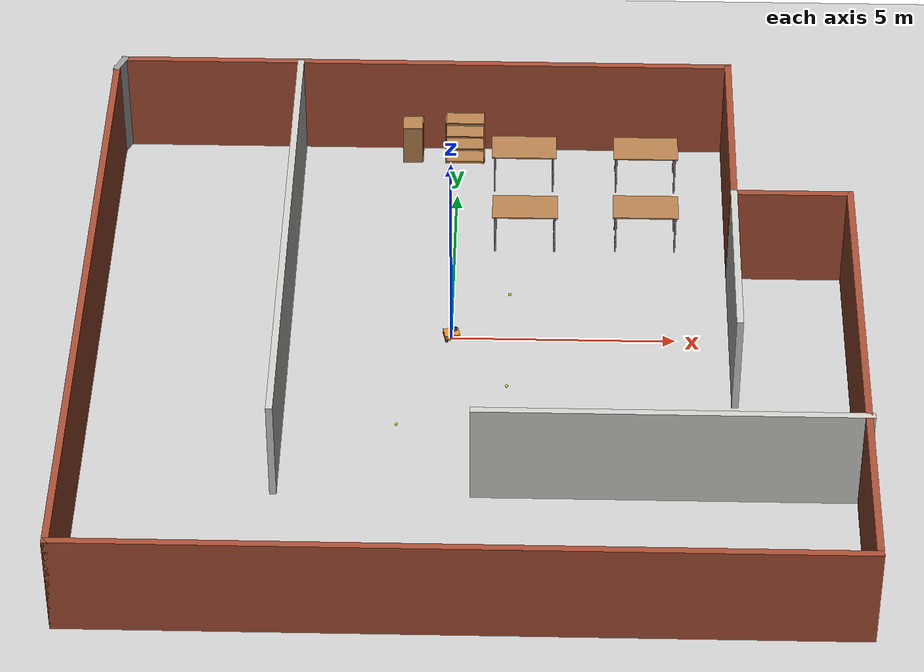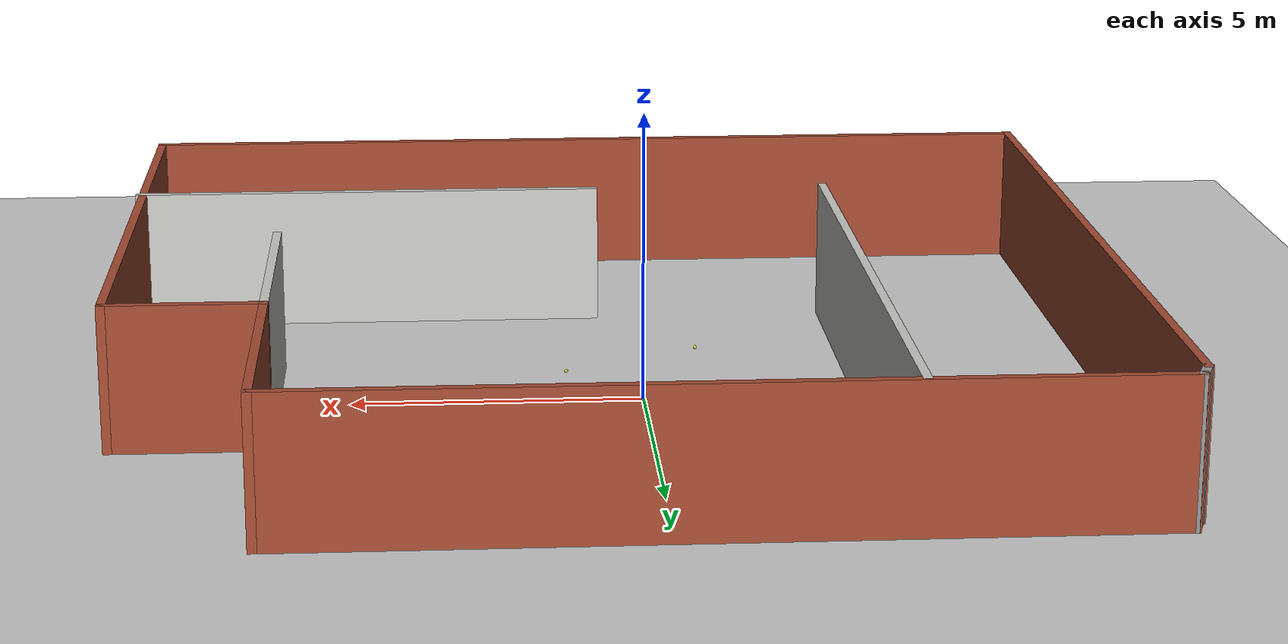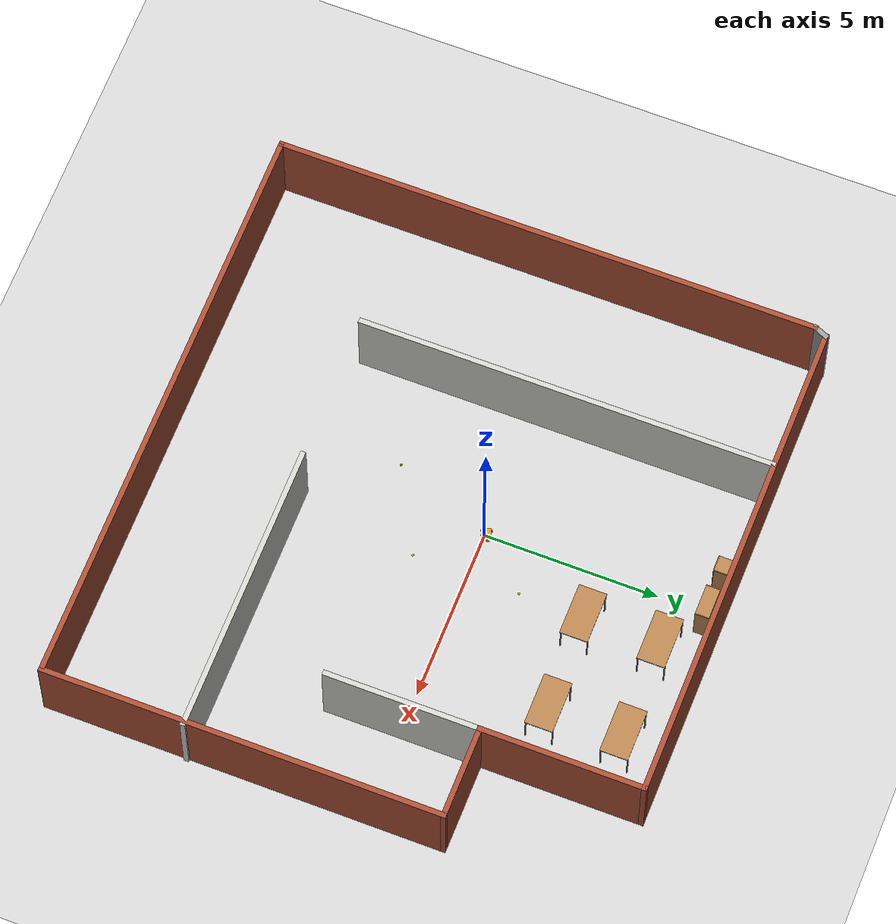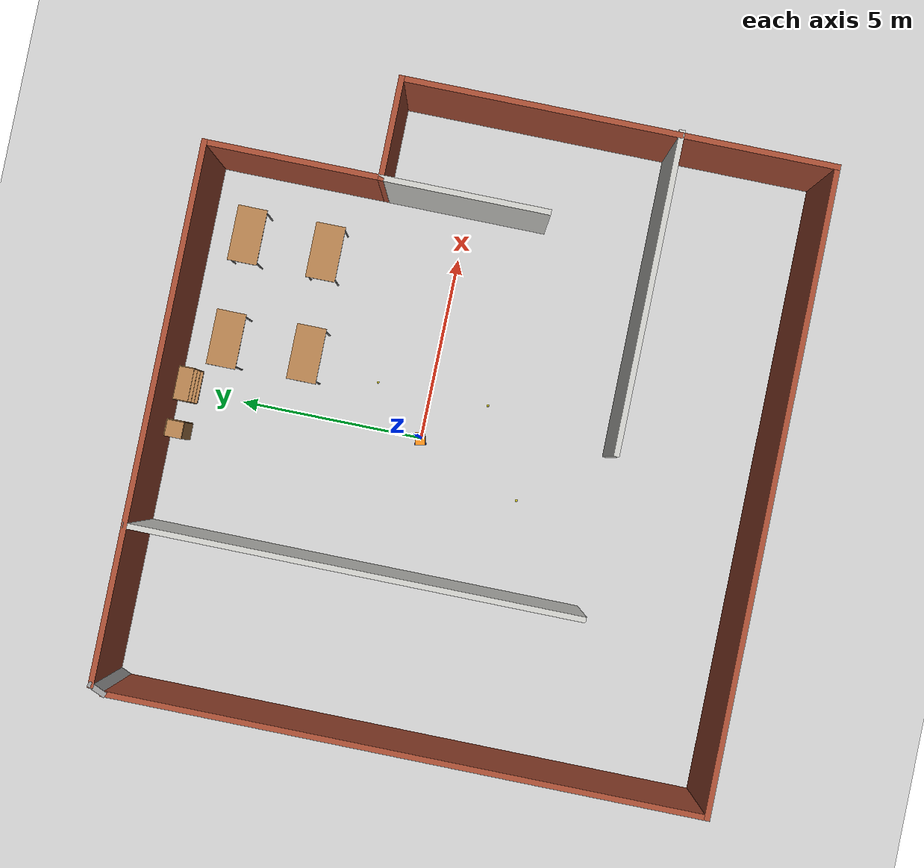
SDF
<sdf version="1.7">
 <world name="default">
  <model name="ground_plane">
   <static>1</static>
   <link name="link">
    <collision name="collision">
     <geometry><plane><normal>0 0 1</normal><size>100 100</size></plane></geometry>
     <surface>
      <contact><collide_bitmask>65535</collide_bitmask></contact>
      <friction><ode><mu>100</mu><mu2>50</mu2></ode></friction>
     </surface>
    </collision>
    <visual name="visual">
     <cast_shadows>0</cast_shadows>
     <geometry><plane><normal>0 0 1</normal><size>100 100</size></plane></geometry>
     <material>
      <script><uri>file://media/materials/scripts/gazebo.material</uri><name>Gazebo/Grey</name></script>
     </material>
    </visual>
   </link>
  </model>
  <model name="gcamp_small_building">
   <pose>0.46855 -1.10251 0 0 -0 0</pose>
   <link name="Wall_11">
    <collision name="Wall_11_Collision">
     <geometry><box><size>12 0.15 2.5</size></box></geometry>
     <pose>0 0 1.25 0 -0 0</pose>
    </collision>
    <visual name="Wall_11_Visual">
     <pose>0 0 1.25 0 -0 0</pose>
     <geometry><box><size>12 0.15 2.5</size></box></geometry>
     <material>
      <script><uri>file://media/materials/scripts/gazebo.material</uri><name>Gazebo/CeilingTiled</name></script>
      <ambient>1 1 1 1</ambient>
     </material>
     <meta><layer>0</layer></meta>
    </visual>
    <pose>-4.16991 2.00561 0 0 -0 -1.5708</pose>
   </link>
   <link name="Wall_13">
    <collision name="Wall_13_Collision">
     <geometry><box><size>8.5 0.15 2.5</size></box></geometry>
     <pose>0 0 1.25 0 -0 0</pose>
    </collision>
    <visual name="Wall_13_Visual">
     <pose>0 0 1.25 0 -0 0</pose>
     <geometry><box><size>8.5 0.15 2.5</size></box></geometry>
     <material>
      <script><uri>file://media/materials/scripts/gazebo.material</uri><name>Gazebo/CeilingTiled</name></script>
      <ambient>1 1 1 1</ambient>
     </material>
     <meta><layer>0</layer></meta>
    </visual>
    <pose>4.29338 -3.92287 0 0 -0 0</pose>
   </link>
   <link name="Wall_15">
    <collision name="Wall_15_Collision">
     <geometry><box><size>4.5 0.15 2.5</size></box></geometry>
     <pose>0 0 1.25 0 -0 0</pose>
    </collision>
    <visual name="Wall_15_Visual">
     <pose>0 0 1.25 0 -0 0</pose>
     <geometry><box><size>4.5 0.15 2.5</size></box></geometry>
     <material>
      <script><uri>file://media/materials/scripts/gazebo.material</uri><name>Gazebo/CeilingTiled</name></script>
      <ambient>1 1 1 1</ambient>
     </material>
     <meta><layer>0</layer></meta>
    </visual>
    <pose>5.8051 1.18826 0 0 -0 -1.5708</pose>
   </link>
   <link name="Wall_3">
    <collision name="Wall_3_Collision">
     <geometry><box><size>15.75 0.15 2.5</size></box></geometry>
     <pose>0 0 1.25 0 -0 0</pose>
    </collision>
    <visual name="Wall_3_Visual">
     <pose>0 0 1.25 0 -0 0</pose>
     <geometry><box><size>15.75 0.15 2.5</size></box></geometry>
     <material>
      <script><uri>file://media/materials/scripts/gazebo.material</uri><name>Gazebo/Bricks</name></script>
      <ambient>1 1 1 1</ambient>
     </material>
     <meta><layer>0</layer></meta>
    </visual>
    <pose>-8.4449 -0.18674 0 0 -0 -1.5708</pose>
   </link>
   <link name="Wall_4">
    <collision name="Wall_4_Collision">
     <geometry><box><size>17 0.15 2.5</size></box></geometry>
     <pose>0 0 1.25 0 -0 0</pose>
    </collision>
    <visual name="Wall_4_Visual">
     <pose>0 0 1.25 0 -0 0</pose>
     <geometry><box><size>17 0.15 2.5</size></box></geometry>
     <material>
      <script><uri>file://media/materials/scripts/gazebo.material</uri><name>Gazebo/Bricks</name></script>
      <ambient>1 1 1 1</ambient>
     </material>
     <meta><layer>0</layer></meta>
    </visual>
    <pose>-0.019899 -7.98674 0 0 -0 0</pose>
   </link>
   <link name="Wall_5">
    <collision name="Wall_5_Collision">
     <geometry><box><size>11.5 0.15 2.5</size></box></geometry>
     <pose>0 0 1.25 0 -0 0</pose>
    </collision>
    <visual name="Wall_5_Visual">
     <pose>0 0 1.25 0 -0 0</pose>
     <geometry><box><size>11.5 0.15 2.5</size></box></geometry>
     <material>
      <script><uri>file://media/materials/scripts/gazebo.material</uri><name>Gazebo/Bricks</name></script>
      <ambient>1 1 1 1</ambient>
     </material>
     <meta><layer>0</layer></meta>
    </visual>
    <pose>8.4051 -2.31174 0 0 -0 1.5708</pose>
   </link>
   <link name="Wall_6">
    <collision name="Wall_6_Collision">
     <geometry><box><size>2.75 0.15 2.5</size></box></geometry>
     <pose>0 0 1.25 0 -0 0</pose>
    </collision>
    <visual name="Wall_6_Visual">
     <pose>0 0 1.25 0 -0 0</pose>
     <geometry><box><size>2.75 0.15 2.5</size></box></geometry>
     <material>
      <script><uri>file://media/materials/scripts/gazebo.material</uri><name>Gazebo/Bricks</name></script>
      <ambient>1 1 1 1</ambient>
     </material>
     <meta><layer>0</layer></meta>
    </visual>
    <pose>7.1051 3.36326 0 0 -0 3.14159</pose>
   </link>
   <link name="Wall_7">
    <collision name="Wall_7_Collision">
     <geometry><box><size>4.75 0.15 2.5</size></box></geometry>
     <pose>0 0 1.25 0 -0 0</pose>
    </collision>
    <visual name="Wall_7_Visual">
     <pose>0 0 1.25 0 -0 0</pose>
     <geometry><box><size>4.75 0.15 2.5</size></box></geometry>
     <material>
      <script><uri>file://media/materials/scripts/gazebo.material</uri><name>Gazebo/Bricks</name></script>
      <ambient>1 1 1 1</ambient>
     </material>
     <meta><layer>0</layer></meta>
    </visual>
    <pose>5.8051 5.66326 0 0 -0 1.5708</pose>
   </link>
   <link name="Wall_8">
    <collision name="Wall_8_Collision">
     <geometry><box><size>14.25 0.15 2.5</size></box></geometry>
     <pose>0 0 1.25 0 -0 0</pose>
    </collision>
    <visual name="Wall_8_Visual">
     <pose>0 0 1.25 0 -0 0</pose>
     <geometry><box><size>14.25 0.15 2.5</size></box></geometry>
     <material>
      <script><uri>file://media/materials/scripts/gazebo.material</uri><name>Gazebo/Bricks</name></script>
      <ambient>1 1 1 1</ambient>
     </material>
     <meta><layer>0</layer></meta>
    </visual>
    <pose>-1.2449 7.96326 0 0 -0 3.14159</pose>
   </link>
   <link name="Wall_9">
    <collision name="Wall_9_Collision">
     <geometry><box><size>0.530789 0.15 2.5</size></box></geometry>
     <pose>0 0 1.25 0 -0 0</pose>
    </collision>
    <visual name="Wall_9_Visual">
     <pose>0 0 1.25 0 -0 0</pose>
     <geometry><box><size>0.530789 0.15 2.5</size></box></geometry>
     <material>
      <script><uri>file://media/materials/scripts/gazebo.material</uri><name>Gazebo/Grey</name></script>
      <ambient>1 1 1 1</ambient>
     </material>
     <meta><layer>0</layer></meta>
    </visual>
    <pose>-8.3699 7.78826 0 0 -0 -1.97569</pose>
   </link>
   <static>1</static>
  </model>
  <model name="table">
   <static>1</static>
   <link name="link">
    <collision name="surface">
     <pose>0 0 1 0 -0 0</pose>
     <geometry><box><size>1.5 0.8 0.03</size></box></geometry>
     <surface><friction><ode><mu>0.6</mu><mu2>0.6</mu2></ode></friction></surface>
    </collision>
    <visual name="visual1">
     <pose>0 0 1 0 -0 0</pose>
     <geometry><box><size>1.5 0.8 0.03</size></box></geometry>
     <material>
      <script><uri>file://media/materials/scripts/gazebo.material</uri><name>Gazebo/Wood</name></script>
     </material>
    </visual>
    <collision name="front_left_leg">
     <pose>0.68 0.38 0.5 0 -0 0</pose>
     <geometry><cylinder><radius>0.02</radius><length>1</length></cylinder></geometry>
    </collision>
    <visual name="front_left_leg">
     <pose>0.68 0.38 0.5 0 -0 0</pose>
     <geometry><cylinder><radius>0.02</radius><length>1</length></cylinder></geometry>
     <material>
      <script><uri>file://media/materials/scripts/gazebo.material</uri><name>Gazebo/Grey</name></script>
     </material>
    </visual>
    <collision name="front_right_leg">
     <pose>0.68 -0.38 0.5 0 -0 0</pose>
     <geometry><cylinder><radius>0.02</radius><length>1</length></cylinder></geometry>
    </collision>
    <visual name="front_right_leg">
     <pose>0.68 -0.38 0.5 0 -0 0</pose>
     <geometry><cylinder><radius>0.02</radius><length>1</length></cylinder></geometry>
     <material>
      <script><uri>file://media/materials/scripts/gazebo.material</uri><name>Gazebo/Grey</name></script>
     </material>
    </visual>
    <collision name="back_right_leg">
     <pose>-0.68 -0.38 0.5 0 -0 0</pose>
     <geometry><cylinder><radius>0.02</radius><length>1</length></cylinder></geometry>
    </collision>
    <visual name="back_right_leg">
     <pose>-0.68 -0.38 0.5 0 -0 0</pose>
     <geometry><cylinder><radius>0.02</radius><length>1</length></cylinder></geometry>
     <material>
      <script><uri>file://media/materials/scripts/gazebo.material</uri><name>Gazebo/Grey</name></script>
     </material>
    </visual>
    <collision name="back_left_leg">
     <pose>-0.68 0.38 0.5 0 -0 0</pose>
     <geometry><cylinder><radius>0.02</radius><length>1</length></cylinder></geometry>
    </collision>
    <visual name="back_left_leg">
     <pose>-0.68 0.38 0.5 0 -0 0</pose>
     <geometry><cylinder><radius>0.02</radius><length>1</length></cylinder></geometry>
     <material>
      <script><uri>file://media/materials/scripts/gazebo.material</uri><name>Gazebo/Grey</name></script>
     </material>
    </visual>
   </link>
   <pose>4.38563 5.61757 0 0 -0 0</pose>
  </model>
  <model name="table_0">
   <static>1</static>
   <link name="link">
    <collision name="surface">
     <pose>0 0 1 0 -0 0</pose>
     <geometry><box><size>1.5 0.8 0.03</size></box></geometry>
     <surface><friction><ode><mu>0.6</mu><mu2>0.6</mu2></ode></friction></surface>
    </collision>
    <visual name="visual1">
     <pose>0 0 1 0 -0 0</pose>
     <geometry><box><size>1.5 0.8 0.03</size></box></geometry>
     <material>
      <script><uri>file://media/materials/scripts/gazebo.material</uri><name>Gazebo/Wood</name></script>
     </material>
    </visual>
    <collision name="front_left_leg">
     <pose>0.68 0.38 0.5 0 -0 0</pose>
     <geometry><cylinder><radius>0.02</radius><length>1</length></cylinder></geometry>
    </collision>
    <visual name="front_left_leg">
     <pose>0.68 0.38 0.5 0 -0 0</pose>
     <geometry><cylinder><radius>0.02</radius><length>1</length></cylinder></geometry>
     <material>
      <script><uri>file://media/materials/scripts/gazebo.material</uri><name>Gazebo/Grey</name></script>
     </material>
    </visual>
    <collision name="front_right_leg">
     <pose>0.68 -0.38 0.5 0 -0 0</pose>
     <geometry><cylinder><radius>0.02</radius><length>1</length></cylinder></geometry>
    </collision>
    <visual name="front_right_leg">
     <pose>0.68 -0.38 0.5 0 -0 0</pose>
     <geometry><cylinder><radius>0.02</radius><length>1</length></cylinder></geometry>
     <material>
      <script><uri>file://media/materials/scripts/gazebo.material</uri><name>Gazebo/Grey</name></script>
     </material>
    </visual>
    <collision name="back_right_leg">
     <pose>-0.68 -0.38 0.5 0 -0 0</pose>
     <geometry><cylinder><radius>0.02</radius><length>1</length></cylinder></geometry>
    </collision>
    <visual name="back_right_leg">
     <pose>-0.68 -0.38 0.5 0 -0 0</pose>
     <geometry><cylinder><radius>0.02</radius><length>1</length></cylinder></geometry>
     <material>
      <script><uri>file://media/materials/scripts/gazebo.material</uri><name>Gazebo/Grey</name></script>
     </material>
    </visual>
    <collision name="back_left_leg">
     <pose>-0.68 0.38 0.5 0 -0 0</pose>
     <geometry><cylinder><radius>0.02</radius><length>1</length></cylinder></geometry>
    </collision>
    <visual name="back_left_leg">
     <pose>-0.68 0.38 0.5 0 -0 0</pose>
     <geometry><cylinder><radius>0.02</radius><length>1</length></cylinder></geometry>
     <material>
      <script><uri>file://media/materials/scripts/gazebo.material</uri><name>Gazebo/Grey</name></script>
     </material>
    </visual>
   </link>
   <pose>4.35793 3.48172 0 0 -0 0</pose>
  </model>
  <model name="bookshelf">
   <static>1</static>
   <link name="link">
    <inertial><mass>1</mass></inertial>
    <collision name="back">
     <pose>0 0.005 0.6 0 -0 0</pose>
     <geometry><box><size>0.9 0.01 1.2</size></box></geometry>
    </collision>
    <visual name="visual1">
     <pose>0 0.005 0.6 0 -0 0</pose>
     <geometry><box><size>0.9 0.01 1.2</size></box></geometry>
     <material>
      <script><uri>file://media/materials/scripts/gazebo.material</uri><name>Gazebo/Wood</name></script>
     </material>
    </visual>
    <collision name="left_side">
     <pose>0.45 -0.195 0.6 0 -0 0</pose>
     <geometry><box><size>0.02 0.4 1.2</size></box></geometry>
    </collision>
    <visual name="visual2">
     <pose>0.45 -0.195 0.6 0 -0 0</pose>
     <geometry><box><size>0.02 0.4 1.2</size></box></geometry>
     <material>
      <script><uri>file://media/materials/scripts/gazebo.material</uri><name>Gazebo/Wood</name></script>
     </material>
    </visual>
    <collision name="right_side">
     <pose>-0.45 -0.195 0.6 0 -0 0</pose>
     <geometry><box><size>0.02 0.4 1.2</size></box></geometry>
    </collision>
    <visual name="visual3">
     <pose>-0.45 -0.195 0.6 0 -0 0</pose>
     <geometry><box><size>0.02 0.4 1.2</size></box></geometry>
     <material>
      <script><uri>file://media/materials/scripts/gazebo.material</uri><name>Gazebo/Wood</name></script>
     </material>
    </visual>
    <collision name="bottom">
     <pose>0 -0.195 0.03 0 -0 0</pose>
     <geometry><box><size>0.88 0.4 0.06</size></box></geometry>
    </collision>
    <visual name="visual4">
     <pose>0 -0.195 0.03 0 -0 0</pose>
     <geometry><box><size>0.88 0.4 0.06</size></box></geometry>
     <material>
      <script><uri>file://media/materials/scripts/gazebo.material</uri><name>Gazebo/Wood</name></script>
     </material>
    </visual>
    <collision name="top">
     <pose>0 -0.195 1.19 0 -0 0</pose>
     <geometry><box><size>0.88 0.4 0.02</size></box></geometry>
    </collision>
    <visual name="visual5">
     <pose>0 -0.195 1.19 0 -0 0</pose>
     <geometry><box><size>0.88 0.4 0.02</size></box></geometry>
     <material>
      <script><uri>file://media/materials/scripts/gazebo.material</uri><name>Gazebo/Wood</name></script>
     </material>
    </visual>
    <collision name="low_shelf">
     <pose>0 -0.195 0.43 0 -0 0</pose>
     <geometry><box><size>0.88 0.4 0.02</size></box></geometry>
    </collision>
    <visual name="visual6">
     <pose>0 -0.195 0.43 0 -0 0</pose>
     <geometry><box><size>0.88 0.4 0.02</size></box></geometry>
     <material>
      <script><uri>file://media/materials/scripts/gazebo.material</uri><name>Gazebo/Wood</name></script>
     </material>
    </visual>
    <collision name="high_shelf">
     <pose>0 -0.195 0.8 0 -0 0</pose>
     <geometry><box><size>0.88 0.4 0.02</size></box></geometry>
    </collision>
    <visual name="visual7">
     <pose>0 -0.195 0.8 0 -0 0</pose>
     <geometry><box><size>0.88 0.4 0.02</size></box></geometry>
     <material>
      <script><uri>file://media/materials/scripts/gazebo.material</uri><name>Gazebo/Wood</name></script>
     </material>
    </visual>
   </link>
   <pose>0.151486 6.62816 0 0 -0 0</pose>
  </model>
  <model name="table_1">
   <static>1</static>
   <link name="link">
    <collision name="surface">
     <pose>0 0 1 0 -0 0</pose>
     <geometry><box><size>1.5 0.8 0.03</size></box></geometry>
     <surface><friction><ode><mu>0.6</mu><mu2>0.6</mu2></ode></friction></surface>
    </collision>
    <visual name="visual1">
     <pose>0 0 1 0 -0 0</pose>
     <geometry><box><size>1.5 0.8 0.03</size></box></geometry>
     <material>
      <script><uri>file://media/materials/scripts/gazebo.material</uri><name>Gazebo/Wood</name></script>
     </material>
    </visual>
    <collision name="front_left_leg">
     <pose>0.68 0.38 0.5 0 -0 0</pose>
     <geometry><cylinder><radius>0.02</radius><length>1</length></cylinder></geometry>
    </collision>
    <visual name="front_left_leg">
     <pose>0.68 0.38 0.5 0 -0 0</pose>
     <geometry><cylinder><radius>0.02</radius><length>1</length></cylinder></geometry>
     <material>
      <script><uri>file://media/materials/scripts/gazebo.material</uri><name>Gazebo/Grey</name></script>
     </material>
    </visual>
    <collision name="front_right_leg">
     <pose>0.68 -0.38 0.5 0 -0 0</pose>
     <geometry><cylinder><radius>0.02</radius><length>1</length></cylinder></geometry>
    </collision>
    <visual name="front_right_leg">
     <pose>0.68 -0.38 0.5 0 -0 0</pose>
     <geometry><cylinder><radius>0.02</radius><length>1</length></cylinder></geometry>
     <material>
      <script><uri>file://media/materials/scripts/gazebo.material</uri><name>Gazebo/Grey</name></script>
     </material>
    </visual>
    <collision name="back_right_leg">
     <pose>-0.68 -0.38 0.5 0 -0 0</pose>
     <geometry><cylinder><radius>0.02</radius><length>1</length></cylinder></geometry>
    </collision>
    <visual name="back_right_leg">
     <pose>-0.68 -0.38 0.5 0 -0 0</pose>
     <geometry><cylinder><radius>0.02</radius><length>1</length></cylinder></geometry>
     <material>
      <script><uri>file://media/materials/scripts/gazebo.material</uri><name>Gazebo/Grey</name></script>
     </material>
    </visual>
    <collision name="back_left_leg">
     <pose>-0.68 0.38 0.5 0 -0 0</pose>
     <geometry><cylinder><radius>0.02</radius><length>1</length></cylinder></geometry>
    </collision>
    <visual name="back_left_leg">
     <pose>-0.68 0.38 0.5 0 -0 0</pose>
     <geometry><cylinder><radius>0.02</radius><length>1</length></cylinder></geometry>
     <material>
      <script><uri>file://media/materials/scripts/gazebo.material</uri><name>Gazebo/Grey</name></script>
     </material>
    </visual>
   </link>
   <pose>1.54863 5.60652 0 0 -0 0</pose>
  </model>
  <model name="table_2">
   <static>1</static>
   <link name="link">
    <collision name="surface">
     <pose>0 0 1 0 -0 0</pose>
     <geometry><box><size>1.5 0.8 0.03</size></box></geometry>
     <surface><friction><ode><mu>0.6</mu><mu2>0.6</mu2></ode></friction></surface>
    </collision>
    <visual name="visual1">
     <pose>0 0 1 0 -0 0</pose>
     <geometry><box><size>1.5 0.8 0.03</size></box></geometry>
     <material>
      <script><uri>file://media/materials/scripts/gazebo.material</uri><name>Gazebo/Wood</name></script>
     </material>
    </visual>
    <collision name="front_left_leg">
     <pose>0.68 0.38 0.5 0 -0 0</pose>
     <geometry><cylinder><radius>0.02</radius><length>1</length></cylinder></geometry>
    </collision>
    <visual name="front_left_leg">
     <pose>0.68 0.38 0.5 0 -0 0</pose>
     <geometry><cylinder><radius>0.02</radius><length>1</length></cylinder></geometry>
     <material>
      <script><uri>file://media/materials/scripts/gazebo.material</uri><name>Gazebo/Grey</name></script>
     </material>
    </visual>
    <collision name="front_right_leg">
     <pose>0.68 -0.38 0.5 0 -0 0</pose>
     <geometry><cylinder><radius>0.02</radius><length>1</length></cylinder></geometry>
    </collision>
    <visual name="front_right_leg">
     <pose>0.68 -0.38 0.5 0 -0 0</pose>
     <geometry><cylinder><radius>0.02</radius><length>1</length></cylinder></geometry>
     <material>
      <script><uri>file://media/materials/scripts/gazebo.material</uri><name>Gazebo/Grey</name></script>
     </material>
    </visual>
    <collision name="back_right_leg">
     <pose>-0.68 -0.38 0.5 0 -0 0</pose>
     <geometry><cylinder><radius>0.02</radius><length>1</length></cylinder></geometry>
    </collision>
    <visual name="back_right_leg">
     <pose>-0.68 -0.38 0.5 0 -0 0</pose>
     <geometry><cylinder><radius>0.02</radius><length>1</length></cylinder></geometry>
     <material>
      <script><uri>file://media/materials/scripts/gazebo.material</uri><name>Gazebo/Grey</name></script>
     </material>
    </visual>
    <collision name="back_left_leg">
     <pose>-0.68 0.38 0.5 0 -0 0</pose>
     <geometry><cylinder><radius>0.02</radius><length>1</length></cylinder></geometry>
    </collision>
    <visual name="back_left_leg">
     <pose>-0.68 0.38 0.5 0 -0 0</pose>
     <geometry><cylinder><radius>0.02</radius><length>1</length></cylinder></geometry>
     <material>
      <script><uri>file://media/materials/scripts/gazebo.material</uri><name>Gazebo/Grey</name></script>
     </material>
    </visual>
   </link>
   <pose>1.5944 3.43185 0 0 -0 0</pose>
  </model>
  <model name="cabinet_0">
   <static>1</static>
   <link name="cabinet_bottom_plate">
    <inertial>
     <pose>0 0 -1 0 -0 0</pose>
     <inertia><ixx>2.05</ixx><ixy>0</ixy><ixz>0</ixz><iyy>2.05</iyy><iyz>0</iyz><izz>2.05</izz></inertia>
     <mass>25</mass>
    </inertial>
    <collision name="cabinet_bottom_plate_geom">
     <pose>0 0 0.01 0 -0 0</pose>
     <geometry><box><size>0.45 0.45 0.02</size></box></geometry>
    </collision>
    <visual name="cabinet_bottom_plate_geom_visual">
     <pose>0 0 0.01 0 -0 0</pose>
     <geometry><box><size>0.45 0.45 0.02</size></box></geometry>
     <material>
      <script><uri>file://media/materials/scripts/gazebo.material</uri><name>Gazebo/Wood</name></script>
     </material>
    </visual>
    <collision name="cabinet_bottom_plate_geom_cabinet_back_plate">
     <pose>0.235 0 0.51 0 -0 0</pose>
     <geometry><box><size>0.02 0.45 1.02</size></box></geometry>
    </collision>
    <visual name="cabinet_bottom_plate_geom_cabinet_back_plate_visual">
     <pose>0.235 0 0.51 0 -0 0</pose>
     <geometry><box><size>0.02 0.45 1.02</size></box></geometry>
     <material>
      <script><uri>file://media/materials/scripts/gazebo.material</uri><name>Gazebo/Wood</name></script>
     </material>
    </visual>
    <collision name="cabinet_bottom_plate_geom_cabinet_left_plate">
     <pose>0 0.235 0.51 0 -0 0</pose>
     <geometry><box><size>0.45 0.02 1.02</size></box></geometry>
    </collision>
    <visual name="cabinet_bottom_plate_geom_cabinet_left_plate_visual">
     <pose>0 0.235 0.51 0 -0 0</pose>
     <geometry><box><size>0.45 0.02 1.02</size></box></geometry>
     <material>
      <script><uri>file://media/materials/scripts/gazebo.material</uri><name>Gazebo/Wood</name></script>
     </material>
    </visual>
    <collision name="cabinet_bottom_plate_geom_cabinet_middle_plate">
     <pose>0 0 0.51 0 -0 0</pose>
     <geometry><box><size>0.45 0.45 0.02</size></box></geometry>
    </collision>
    <visual name="cabinet_bottom_plate_geom_cabinet_middle_plate_visual">
     <pose>0 0 0.51 0 -0 0</pose>
     <geometry><box><size>0.45 0.45 0.02</size></box></geometry>
     <material>
      <script><uri>file://media/materials/scripts/gazebo.material</uri><name>Gazebo/Wood</name></script>
     </material>
    </visual>
    <collision name="cabinet_bottom_plate_geom_cabinet_right_plate">
     <pose>0 -0.235 0.51 0 -0 0</pose>
     <geometry><box><size>0.45 0.02 1.02</size></box></geometry>
    </collision>
    <visual name="cabinet_bottom_plate_geom_cabinet_right_plate_visual">
     <pose>0 -0.235 0.51 0 -0 0</pose>
     <geometry><box><size>0.45 0.02 1.02</size></box></geometry>
     <material>
      <script><uri>file://media/materials/scripts/gazebo.material</uri><name>Gazebo/Wood</name></script>
     </material>
    </visual>
    <collision name="cabinet_bottom_plate_geom_cabinet_top_plate">
     <pose>0 0 1.01 0 -0 0</pose>
     <geometry><box><size>0.45 0.45 0.02</size></box></geometry>
    </collision>
    <visual name="cabinet_bottom_plate_geom_cabinet_top_plate_visual">
     <pose>0 0 1.01 0 -0 0</pose>
     <geometry><box><size>0.45 0.45 0.02</size></box></geometry>
     <material>
      <script><uri>file://media/materials/scripts/gazebo.material</uri><name>Gazebo/Wood</name></script>
     </material>
    </visual>
   </link>
   <pose>-1.07996 6.47759 0 0 -0 0</pose>
  </model>
  <model name="my_bot">
   <link name="base_link">
    <inertial>
     <pose>-0.042393 0 0.081098 0 -0 0</pose>
     <mass>0.61</mass>
     <inertia>
      <ixx>0.00561003</ixx>
      <ixy>0</ixy>
      <ixz>-0.000833484</ixz>
      <iyy>0.00813047</iyy>
      <iyz>0</iyz>
      <izz>0.00849792</izz>
     </inertia>
    </inertial>
    <collision name="base_link_fixed_joint_lump__chassis_collision">
     <pose>-0.0585 0 0.059 0 -0 0</pose>
     <geometry><box><size>0.335 0.265 0.138</size></box></geometry>
    </collision>
    <collision name="base_link_fixed_joint_lump__caster_wheel_collision_1">
     <pose>0.099 0 -0.023 0 -0 0</pose>
     <geometry><sphere><radius>0.01</radius></sphere></geometry>
     <surface><friction><ode><mu>0.001</mu><mu2>0.001</mu2></ode></friction></surface>
    </collision>
    <collision name="base_link_fixed_joint_lump__laser_frame_collision_2">
     <pose>0.024 0 0.202 0 -0 0</pose>
     <geometry><cylinder><length>0.04</length><radius>0.05</radius></cylinder></geometry>
    </collision>
    <visual name="base_link_fixed_joint_lump__chassis_visual">
     <pose>-0.0585 0 0.059 0 -0 0</pose>
     <geometry><box><size>0.335 0.265 0.138</size></box></geometry>
     <material>
      <script><name>Gazebo/Orange</name><uri>file://media/materials/scripts/gazebo.material</uri></script>
     </material>
    </visual>
    <visual name="base_link_fixed_joint_lump__caster_wheel_visual_1">
     <pose>0.099 0 -0.023 0 -0 0</pose>
     <geometry><sphere><radius>0.01</radius></sphere></geometry>
     <material>
      <script><name>Gazebo/White</name><uri>file://media/materials/scripts/gazebo.material</uri></script>
     </material>
    </visual>
    <visual name="base_link_fixed_joint_lump__face_link_visual_2">
     <pose>0.109 0.05 0.069 3.14159 1.57079 3.14159</pose>
     <geometry><cylinder><length>0.002</length><radius>0.01</radius></cylinder></geometry>
     <material>
      <script><name>Gazebo/Black</name><uri>file://media/materials/scripts/gazebo.material</uri></script>
     </material>
    </visual>
    <visual name="base_link_fixed_joint_lump__face_link_visual_3">
     <pose>0.109 -0.05 0.069 3.14159 1.57079 3.14159</pose>
     <geometry><cylinder><length>0.002</length><radius>0.01</radius></cylinder></geometry>
     <material>
      <script><name>Gazebo/Black</name><uri>file://media/materials/scripts/gazebo.material</uri></script>
     </material>
    </visual>
    <visual name="base_link_fixed_joint_lump__face_link_visual_4">
     <pose>0.098 0 0.059 0 1.5 0</pose>
     <geometry><cylinder><length>0.02</length><radius>0.05</radius></cylinder></geometry>
     <material>
      <script><name>Gazebo/Black</name><uri>file://media/materials/scripts/gazebo.material</uri></script>
     </material>
    </visual>
    <visual name="base_link_fixed_joint_lump__laser_frame_visual_5">
     <pose>0.024 0 0.202 0 -0 0</pose>
     <geometry><cylinder><length>0.04</length><radius>0.05</radius></cylinder></geometry>
     <material>
      <script><name>Gazebo/Black</name><uri>file://media/materials/scripts/gazebo.material</uri></script>
     </material>
    </visual>
    <visual name="base_link_fixed_joint_lump__laser_frame_visual_6">
     <pose>0.024 0 0.152 0 -0 0</pose>
     <geometry><cylinder><length>0.1</length><radius>0.01</radius></cylinder></geometry>
     <material>
      <script><name>Gazebo/Black</name><uri>file://media/materials/scripts/gazebo.material</uri></script>
     </material>
    </visual>
    <sensor name="laser" type="ray">
     <visualize>0</visualize>
     <update_rate>10</update_rate>
     <ray>
      <scan>
       <horizontal>
        <samples>360</samples>
        <min_angle>-3.14</min_angle>
        <max_angle>3.14</max_angle>
        <resolution>1</resolution>
       </horizontal>
       <vertical><samples>1</samples><min_angle>0</min_angle><max_angle>0</max_angle></vertical>
      </scan>
      <range><min>0.3</min><max>12</max></range>
     </ray>
     <plugin name="laser_controller" filename="libgazebo_ros_ray_sensor.so">
      <ros><argument>~/out:=scan</argument></ros>
      <output_type>sensor_msgs/LaserScan</output_type>
      <frame_name>laser_frame</frame_name>
     </plugin>
     <pose>0.024 0 0.202 0 -0 0</pose>
    </sensor>
   </link>
   <joint name="left_wheel_joint" type="revolute">
    <pose relative_to="base_link">-0.2 0.1485 0 -1.5708 0 0</pose>
    <parent>base_link</parent>
    <child>left_wheel</child>
    <axis>
     <xyz>0 0 1</xyz>
     <limit><lower>-1e+16</lower><upper>1e+16</upper></limit>
     <dynamics><spring_reference>0</spring_reference><spring_stiffness>0</spring_stiffness></dynamics>
    </axis>
   </joint>
   <link name="left_wheel">
    <pose relative_to="left_wheel_joint">0 0 0 0 -0 0</pose>
    <inertial>
     <mass>0.05</mass>
     <inertia>
      <ixx>1.64292e-05</ixx>
      <ixy>0</ixy>
      <ixz>0</ixz>
      <iyy>1.64292e-05</iyy>
      <iyz>0</iyz>
      <izz>2.7225e-05</izz>
     </inertia>
    </inertial>
    <collision name="left_wheel_collision">
     <geometry><sphere><radius>0.033</radius></sphere></geometry>
    </collision>
    <visual name="left_wheel_visual">
     <geometry><cylinder><length>0.026</length><radius>0.033</radius></cylinder></geometry>
     <material>
      <script><name>Gazebo/Blue</name><uri>file://media/materials/scripts/gazebo.material</uri></script>
     </material>
    </visual>
   </link>
   <joint name="right_wheel_joint" type="revolute">
    <pose relative_to="base_link">-0.2 -0.1485 0 1.5708 -0 0</pose>
    <parent>base_link</parent>
    <child>right_wheel</child>
    <axis>
     <xyz>0 0 -1</xyz>
     <limit><lower>-1e+16</lower><upper>1e+16</upper></limit>
     <dynamics><spring_reference>0</spring_reference><spring_stiffness>0</spring_stiffness></dynamics>
    </axis>
   </joint>
   <link name="right_wheel">
    <pose relative_to="right_wheel_joint">0 0 0 0 -0 0</pose>
    <inertial>
     <mass>0.05</mass>
     <inertia>
      <ixx>1.64292e-05</ixx>
      <ixy>0</ixy>
      <ixz>0</ixz>
      <iyy>1.64292e-05</iyy>
      <iyz>0</iyz>
      <izz>2.7225e-05</izz>
     </inertia>
    </inertial>
    <collision name="right_wheel_collision">
     <geometry><sphere><radius>0.033</radius></sphere></geometry>
    </collision>
    <visual name="right_wheel_visual">
     <geometry><cylinder><length>0.026</length><radius>0.033</radius></cylinder></geometry>
     <material>
      <script><name>Gazebo/Blue</name><uri>file://media/materials/scripts/gazebo.material</uri></script>
     </material>
    </visual>
   </link>
   <plugin name="gazebo_ros2_control" filename="libgazebo_ros2_control.so">
    <parameters>/home/winter24/gcamp_ros2_ws/install/gcamp_gazebo/share/gcamp_gazebo/config/my_controllers.yaml</parameters>
    <parameters>/home/winter24/gcamp_ros2_ws/install/gcamp_gazebo/share/gcamp_gazebo/config/gaz_ros2_ctl_use_sim.yaml</parameters>
   </plugin>
   <frame name="base_footprint_joint" attached_to="base_link"/>
   <frame name="base_footprint" attached_to="base_footprint_joint"/>
   <frame name="caster_wheel_joint" attached_to="chassis"><pose>0.325 0 -0.013 0 -0 0</pose></frame>
   <frame name="caster_wheel" attached_to="caster_wheel_joint"/>
   <frame name="face_joint" attached_to="chassis"><pose>0.335 0 0.069 0 -0 0</pose></frame>
   <frame name="face_link" attached_to="face_joint"/>
   <frame name="laser_joint" attached_to="chassis"><pose>0.25 0 0.212 0 -0 0</pose></frame>
   <frame name="laser_frame" attached_to="laser_joint"/>
   <frame name="chassis_joint" attached_to="base_link"><pose>-0.226 0 -0.01 0 -0 0</pose></frame>
   <frame name="chassis" attached_to="chassis_joint"/>
   <pose>0.051295 0.049104 0.032995 -1.2e-05 1.4e-05 0.216528</pose>
  </model>
  <model name="unit_sphere">
   <link name="link">
    <inertial>
     <mass>1</mass>
     <inertia><ixx>0.1</ixx><ixy>0</ixy><ixz>0</ixz><iyy>0.1</iyy><iyz>0</iyz><izz>0.1</izz></inertia>
    </inertial>
    <pose>0 0 0.328257 0 -0 0</pose>
    <visual name="visual">
     <geometry><sphere><radius>0.033</radius></sphere></geometry>
     <material>
      <script><name>Gazebo/Yellow</name><uri>file://media/materials/scripts/gazebo.material</uri></script>
      <shader type="pixel"><normal_map>__default__</normal_map></shader>
      <ambient>1 1 0 1</ambient>
      <diffuse>1 1 0 1</diffuse>
      <emissive>0 0 0 1</emissive>
     </material>
    </visual>
    <collision name="collision">
     <geometry><sphere><radius>0.033</radius></sphere></geometry>
     <surface>
      <friction>
       <ode><mu>1</mu><mu2>1</mu2><fdir1>0 0 0</fdir1><slip1>0</slip1><slip2>0</slip2></ode>
       <torsional>
        <coefficient>1</coefficient>
        <patch_radius>0</patch_radius>
        <surface_radius>0</surface_radius>
        <use_patch_radius>1</use_patch_radius>
        <ode><slip>0</slip></ode>
       </torsional>
      </friction>
      <bounce><restitution_coefficient>0</restitution_coefficient><threshold>1e+06</threshold></bounce>
      <contact>
       <collide_without_contact>0</collide_without_contact>
       <collide_without_contact_bitmask>1</collide_without_contact_bitmask>
       <collide_bitmask>1</collide_bitmask>
       <ode>
        <soft_cfm>0</soft_cfm>
        <soft_erp>0.2</soft_erp>
        <kp>1e+13</kp>
        <kd>1</kd>
        <max_vel>0.01</max_vel>
        <min_depth>0</min_depth>
       </ode>
       <bullet>
        <split_impulse>1</split_impulse>
        <split_impulse_penetration_threshold>-0.01</split_impulse_penetration_threshold>
        <soft_cfm>0</soft_cfm>
        <soft_erp>0.2</soft_erp>
        <kp>1e+13</kp>
        <kd>1</kd>
       </bullet>
      </contact>
     </surface>
    </collision>
   </link>
   <static>0</static>
   <pose>1.25423 -1.59503 -0.295257 0 -0 0</pose>
  </model>
  <model name="unit_sphere_clone">
   <link name="link">
    <inertial>
     <mass>1</mass>
     <inertia><ixx>0.1</ixx><ixy>0</ixy><ixz>0</ixz><iyy>0.1</iyy><iyz>0</iyz><izz>0.1</izz></inertia>
    </inertial>
    <pose>0 0 0.328257 0 -0 0</pose>
    <visual name="visual">
     <geometry><sphere><radius>0.033</radius></sphere></geometry>
     <material>
      <script><name>Gazebo/Yellow</name><uri>file://media/materials/scripts/gazebo.material</uri></script>
      <shader type="pixel"><normal_map>__default__</normal_map></shader>
      <ambient>1 1 0 1</ambient>
      <diffuse>1 1 0 1</diffuse>
      <emissive>0 0 0 1</emissive>
     </material>
    </visual>
    <collision name="collision">
     <geometry><sphere><radius>0.033</radius></sphere></geometry>
     <surface>
      <friction>
       <ode><mu>1</mu><mu2>1</mu2><fdir1>0 0 0</fdir1><slip1>0</slip1><slip2>0</slip2></ode>
       <torsional>
        <coefficient>1</coefficient>
        <patch_radius>0</patch_radius>
        <surface_radius>0</surface_radius>
        <use_patch_radius>1</use_patch_radius>
        <ode><slip>0</slip></ode>
       </torsional>
      </friction>
      <bounce><restitution_coefficient>0</restitution_coefficient><threshold>1e+06</threshold></bounce>
      <contact>
       <collide_without_contact>0</collide_without_contact>
       <collide_without_contact_bitmask>1</collide_without_contact_bitmask>
       <collide_bitmask>1</collide_bitmask>
       <ode>
        <soft_cfm>0</soft_cfm>
        <soft_erp>0.2</soft_erp>
        <kp>1e+13</kp>
        <kd>1</kd>
        <max_vel>0.01</max_vel>
        <min_depth>0</min_depth>
       </ode>
       <bullet>
        <split_impulse>1</split_impulse>
        <split_impulse_penetration_threshold>-0.01</split_impulse_penetration_threshold>
        <soft_cfm>0</soft_cfm>
        <soft_erp>0.2</soft_erp>
        <kp>1e+13</kp>
        <kd>1</kd>
       </bullet>
      </contact>
     </surface>
    </collision>
   </link>
   <static>0</static>
   <pose>-1.14094 -2.8775 -0.295257 0 -0 0</pose>
  </model>
  <model name="unit_sphere_clone_1">
   <link name="link">
    <inertial>
     <mass>1</mass>
     <inertia><ixx>0.1</ixx><ixy>0</ixy><ixz>0</ixz><iyy>0.1</iyy><iyz>0</iyz><izz>0.1</izz></inertia>
    </inertial>
    <pose>0 0 0.328257 0 -0 0</pose>
    <visual name="visual">
     <geometry><sphere><radius>0.033</radius></sphere></geometry>
     <material>
      <script><name>Gazebo/Yellow</name><uri>file://media/materials/scripts/gazebo.material</uri></script>
      <shader type="pixel"><normal_map>__default__</normal_map></shader>
      <ambient>1 1 0 1</ambient>
      <diffuse>1 1 0 1</diffuse>
      <emissive>0 0 0 1</emissive>
     </material>
    </visual>
    <collision name="collision">
     <geometry><sphere><radius>0.033</radius></sphere></geometry>
     <surface>
      <friction>
       <ode><mu>1</mu><mu2>1</mu2><fdir1>0 0 0</fdir1><slip1>0</slip1><slip2>0</slip2></ode>
       <torsional>
        <coefficient>1</coefficient>
        <patch_radius>0</patch_radius>
        <surface_radius>0</surface_radius>
        <use_patch_radius>1</use_patch_radius>
        <ode><slip>0</slip></ode>
       </torsional>
      </friction>
      <bounce><restitution_coefficient>0</restitution_coefficient><threshold>1e+06</threshold></bounce>
      <contact>
       <collide_without_contact>0</collide_without_contact>
       <collide_without_contact_bitmask>1</collide_without_contact_bitmask>
       <collide_bitmask>1</collide_bitmask>
       <ode>
        <soft_cfm>0</soft_cfm>
        <soft_erp>0.2</soft_erp>
        <kp>1e+13</kp>
        <kd>1</kd>
        <max_vel>0.01</max_vel>
        <min_depth>0</min_depth>
       </ode>
       <bullet>
        <split_impulse>1</split_impulse>
        <split_impulse_penetration_threshold>-0.01</split_impulse_penetration_threshold>
        <soft_cfm>0</soft_cfm>
        <soft_erp>0.2</soft_erp>
        <kp>1e+13</kp>
        <kd>1</kd>
       </bullet>
      </contact>
     </surface>
    </collision>
   </link>
   <static>0</static>
   <pose>1.27866 1.48529 -0.295257 0 -0 0</pose>
  </model>
 </world>
</sdf>
